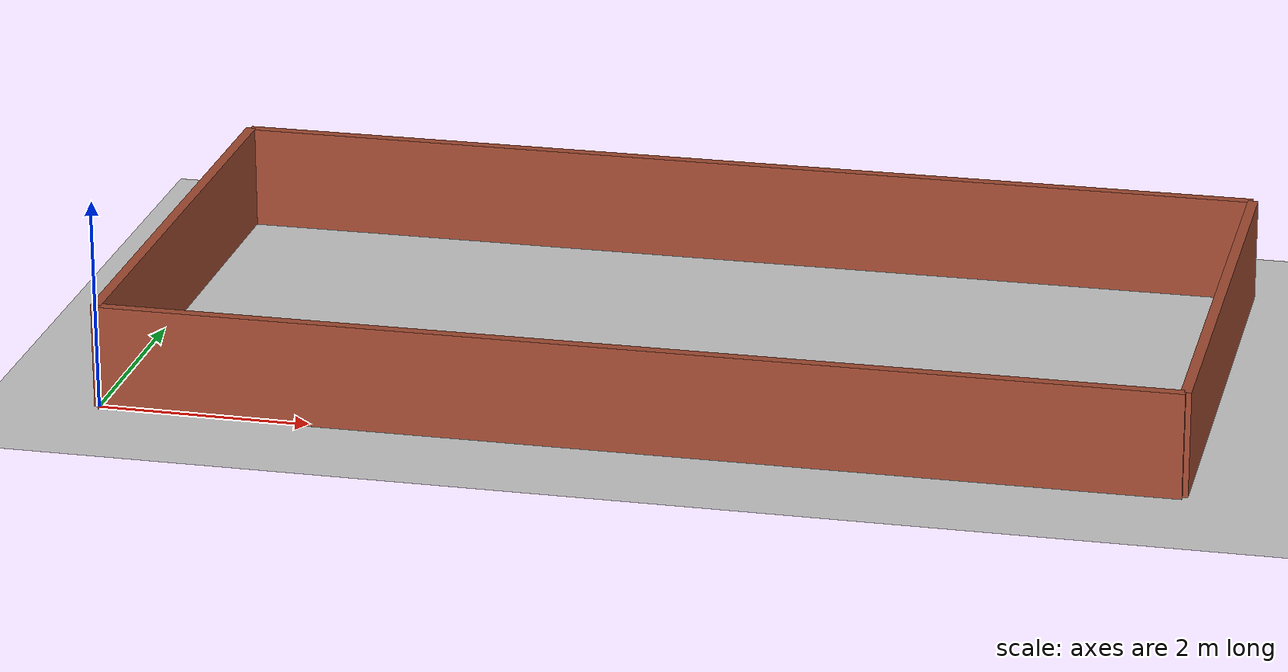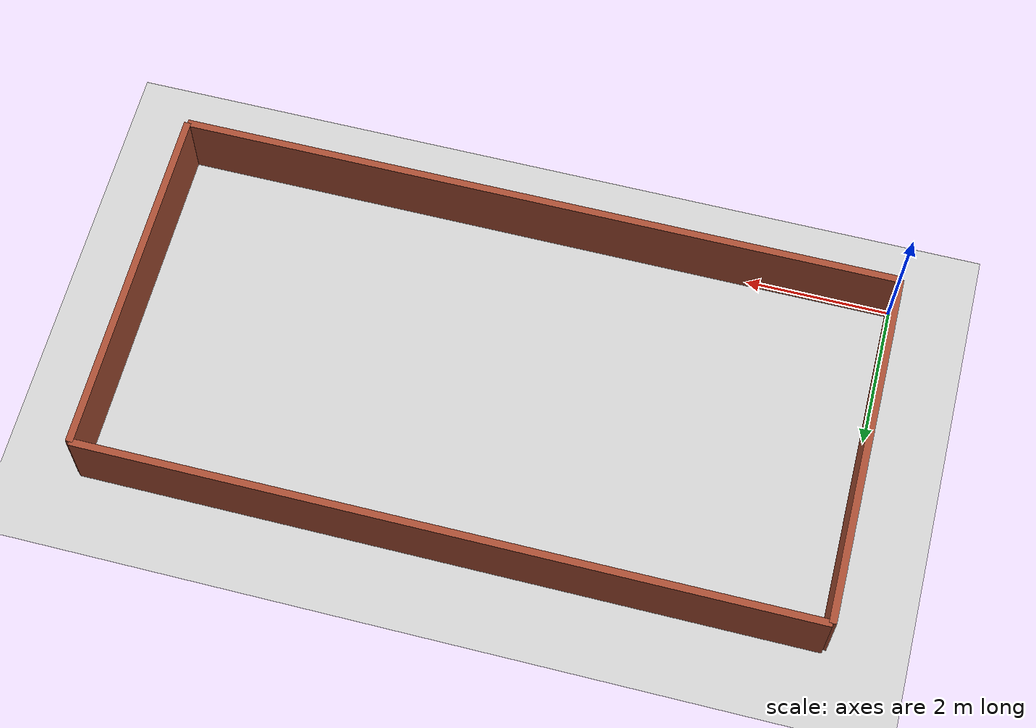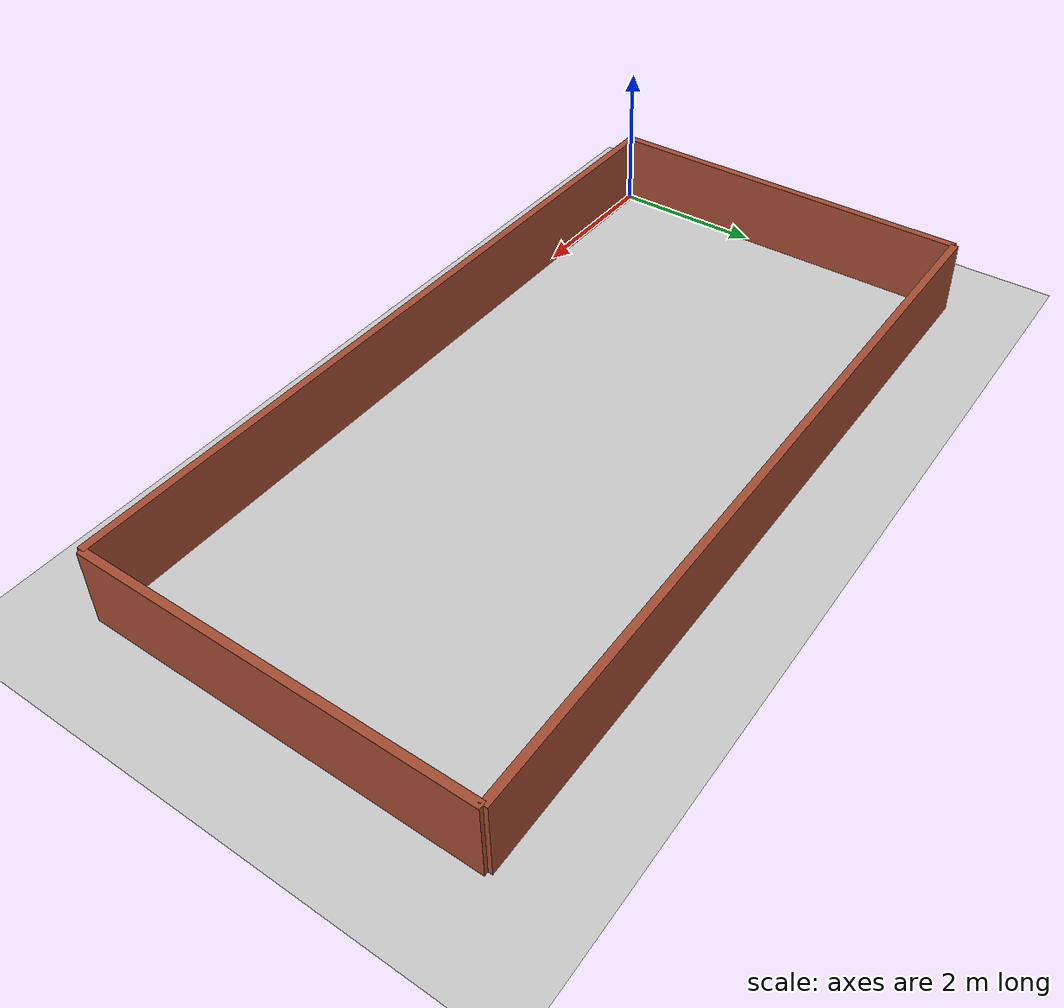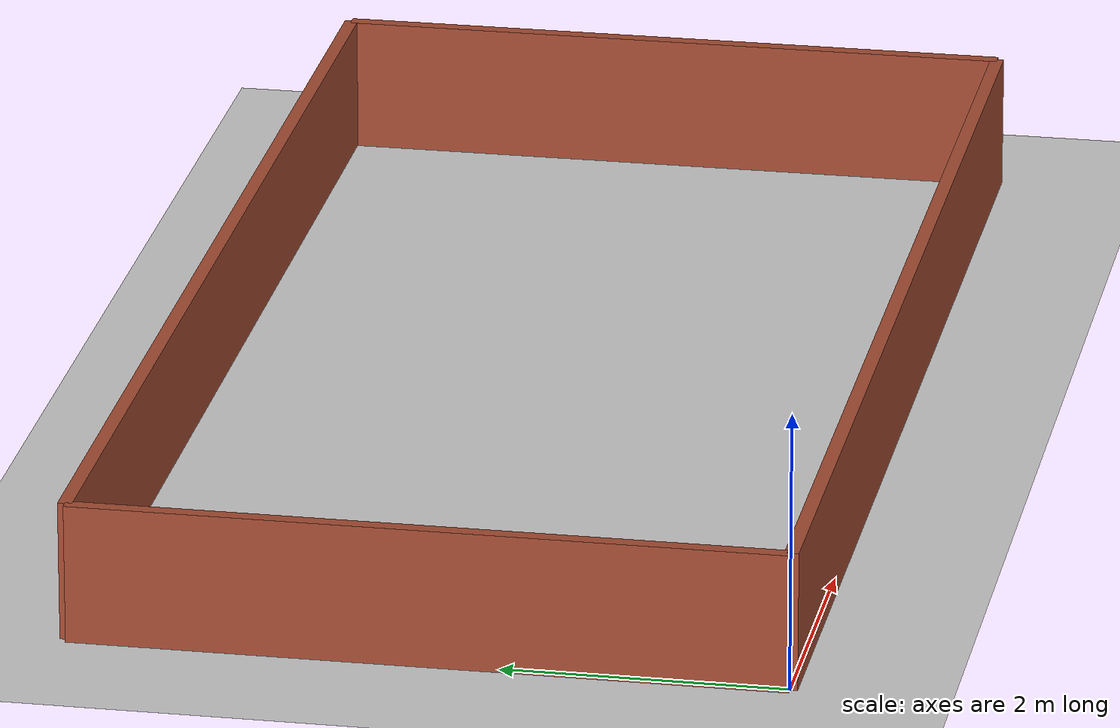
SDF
<?xml version="1.0" ?>
<sdf version="1.6">
  <world name="default">
    <!-- A global light source -->
    <include>
      <uri>model://sun</uri>
    </include>
    <!-- A ground plane -->
    <include>
      <uri>model://ground_plane</uri>
    </include>

  <model name='walls'>
  <static>1</static>
    <link name='Wall_0'>
    <pose frame=''>5 0 0 0 -0 0</pose>
      <self_collide>0</self_collide>
      <kinematic>0</kinematic>
      <visual name='Wall_0_Visual'>
        <pose frame=''>0 0 0.5 0 -0 0</pose>
        <geometry>
          <box>
            <size>10 0.1 1</size>
          </box>
        </geometry>
        <material>
          <script>
            <uri>file://media/materials/scripts/gazebo.material</uri>
            <name>Gazebo/Bricks</name>
          </script>
          <ambient>1 1 1 1</ambient>
          <diffuse>1 1 1 1</diffuse>
          <specular>0.2 0.2 0.2 1</specular>
          <emissive>0 0 0 1</emissive>
        </material>
        <cast_shadows>1</cast_shadows>
        <transparency>0</transparency>
      </visual>
      <collision name='Wall_0_Collision'>
        <laser_retro>0</laser_retro>
        <max_contacts>10</max_contacts>
        <pose frame=''>0 0 0.5 0 -0 0</pose>
        <geometry>
          <box>
            <size>10 0.1 1</size>
          </box>
        </geometry>
        <surface>
          <friction>
            <ode>
              <mu>1</mu>
              <mu2>1</mu2>
              <fdir1>0 0 0</fdir1>
              <slip1>0</slip1>
              <slip2>0</slip2>
            </ode>
            <torsional>
              <coefficient>1</coefficient>
              <patch_radius>0</patch_radius>
              <surface_radius>0</surface_radius>
              <use_patch_radius>1</use_patch_radius>
              <ode>
                <slip>0</slip>
              </ode>
            </torsional>
          </friction>
          <bounce>
            <restitution_coefficient>0</restitution_coefficient>
            <threshold>1e+06</threshold>
          </bounce>
          <contact>
            <collide_without_contact>0</collide_without_contact>
            <collide_without_contact_bitmask>1</collide_without_contact_bitmask>
            <collide_bitmask>1</collide_bitmask>
            <ode>
              <soft_cfm>0</soft_cfm>
              <soft_erp>0.2</soft_erp>
              <kp>1e+13</kp>
              <kd>1</kd>
              <max_vel>0.01</max_vel>
              <min_depth>0</min_depth>
            </ode>
            <bullet>
              <split_impulse>1</split_impulse>
              <split_impulse_penetration_threshold>-0.01</split_impulse_penetration_threshold>
              <soft_cfm>0</soft_cfm>
              <soft_erp>0.2</soft_erp>
              <kp>1e+13</kp>
              <kd>1</kd>
            </bullet>
          </contact>
        </surface>
      </collision>
    </link>

    <link name='Wall_1'>
    <pose frame=''>5 5 0 0 -0 0</pose>
      <self_collide>0</self_collide>
      <kinematic>0</kinematic>
      <visual name='Wall_1_Visual'>
        <pose frame=''>0 0 0.5 0 -0 0</pose>
        <geometry>
          <box>
            <size>10 0.1 1</size>
          </box>
        </geometry>
        <material>
          <script>
            <uri>file://media/materials/scripts/gazebo.material</uri>
            <name>Gazebo/Bricks</name>
          </script>
          <ambient>1 1 1 1</ambient>
          <diffuse>1 1 1 1</diffuse>
          <specular>0.2 0.2 0.2 1</specular>
          <emissive>0 0 0 1</emissive>
        </material>
        <cast_shadows>1</cast_shadows>
        <transparency>0</transparency>
      </visual>
      <collision name='Wall_1_Collision'>
        <laser_retro>0</laser_retro>
        <max_contacts>10</max_contacts>
        <pose frame=''>0 0 0.5 0 -0 0</pose>
        <geometry>
          <box>
            <size>10 0.1 1</size>
          </box>
        </geometry>
        <surface>
          <friction>
            <ode>
              <mu>1</mu>
              <mu2>1</mu2>
              <fdir1>0 0 0</fdir1>
              <slip1>0</slip1>
              <slip2>0</slip2>
            </ode>
            <torsional>
              <coefficient>1</coefficient>
              <patch_radius>0</patch_radius>
              <surface_radius>0</surface_radius>
              <use_patch_radius>1</use_patch_radius>
              <ode>
                <slip>0</slip>
              </ode>
            </torsional>
          </friction>
          <bounce>
            <restitution_coefficient>0</restitution_coefficient>
            <threshold>1e+06</threshold>
          </bounce>
          <contact>
            <collide_without_contact>0</collide_without_contact>
            <collide_without_contact_bitmask>1</collide_without_contact_bitmask>
            <collide_bitmask>1</collide_bitmask>
            <ode>
              <soft_cfm>0</soft_cfm>
              <soft_erp>0.2</soft_erp>
              <kp>1e+13</kp>
              <kd>1</kd>
              <max_vel>0.01</max_vel>
              <min_depth>0</min_depth>
            </ode>
            <bullet>
              <split_impulse>1</split_impulse>
              <split_impulse_penetration_threshold>-0.01</split_impulse_penetration_threshold>
              <soft_cfm>0</soft_cfm>
              <soft_erp>0.2</soft_erp>
              <kp>1e+13</kp>
              <kd>1</kd>
            </bullet>
          </contact>
        </surface>
      </collision>
    </link>

    <link name='Wall_2'>
    <pose frame=''>0 2.5 0 0 -0 1.5707</pose>
      <self_collide>0</self_collide>
      <kinematic>0</kinematic>
      <visual name='Wall_2_Visual'>
        <pose frame=''>0 0 0.5 0 -0 0</pose>
        <geometry>
          <box>
            <size>5 0.1 1</size>
          </box>
        </geometry>
        <material>
          <script>
            <uri>file://media/materials/scripts/gazebo.material</uri>
            <name>Gazebo/Bricks</name>
          </script>
          <ambient>1 1 1 1</ambient>
          <diffuse>1 1 1 1</diffuse>
          <specular>0.2 0.2 0.2 1</specular>
          <emissive>0 0 0 1</emissive>
        </material>
        <cast_shadows>1</cast_shadows>
        <transparency>0</transparency>
      </visual>
      <collision name='Wall_2_Collision'>
        <laser_retro>0</laser_retro>
        <max_contacts>10</max_contacts>
        <pose frame=''>0 0 0.5 0 -0 0</pose>
        <geometry>
          <box>
            <size>5 0.1 1</size>
          </box>
        </geometry>
        <surface>
          <friction>
            <ode>
              <mu>1</mu>
              <mu2>1</mu2>
              <fdir1>0 0 0</fdir1>
              <slip1>0</slip1>
              <slip2>0</slip2>
            </ode>
            <torsional>
              <coefficient>1</coefficient>
              <patch_radius>0</patch_radius>
              <surface_radius>0</surface_radius>
              <use_patch_radius>1</use_patch_radius>
              <ode>
                <slip>0</slip>
              </ode>
            </torsional>
          </friction>
          <bounce>
            <restitution_coefficient>0</restitution_coefficient>
            <threshold>1e+06</threshold>
          </bounce>
          <contact>
            <collide_without_contact>0</collide_without_contact>
            <collide_without_contact_bitmask>1</collide_without_contact_bitmask>
            <collide_bitmask>1</collide_bitmask>
            <ode>
              <soft_cfm>0</soft_cfm>
              <soft_erp>0.2</soft_erp>
              <kp>1e+13</kp>
              <kd>1</kd>
              <max_vel>0.01</max_vel>
              <min_depth>0</min_depth>
            </ode>
            <bullet>
              <split_impulse>1</split_impulse>
              <split_impulse_penetration_threshold>-0.01</split_impulse_penetration_threshold>
              <soft_cfm>0</soft_cfm>
              <soft_erp>0.2</soft_erp>
              <kp>1e+13</kp>
              <kd>1</kd>
            </bullet>
          </contact>
        </surface>
      </collision>
    </link>

    <link name='Wall_3'>
    <pose frame=''>10 2.5 0 0 -0 1.5707</pose>
      <self_collide>0</self_collide>
      <kinematic>0</kinematic>
      <visual name='Wall_3_Visual'>
        <pose frame=''>0 0 0.5 0 -0 0</pose>
        <geometry>
          <box>
            <size>5 0.1 1</size>
          </box>
        </geometry>
        <material>
          <script>
            <uri>file://media/materials/scripts/gazebo.material</uri>
            <name>Gazebo/Bricks</name>
          </script>
          <ambient>1 1 1 1</ambient>
          <diffuse>1 1 1 1</diffuse>
          <specular>0.2 0.2 0.2 1</specular>
          <emissive>0 0 0 1</emissive>
        </material>
        <cast_shadows>1</cast_shadows>
        <transparency>0</transparency>
      </visual>
      <collision name='Wall_3_Collision'>
        <laser_retro>0</laser_retro>
        <max_contacts>10</max_contacts>
        <pose frame=''>0 0 0.5 0 -0 0</pose>
        <geometry>
          <box>
            <size>5 0.1 1</size>
          </box>
        </geometry>
        <surface>
          <friction>
            <ode>
              <mu>1</mu>
              <mu2>1</mu2>
              <fdir1>0 0 0</fdir1>
              <slip1>0</slip1>
              <slip2>0</slip2>
            </ode>
            <torsional>
              <coefficient>1</coefficient>
              <patch_radius>0</patch_radius>
              <surface_radius>0</surface_radius>
              <use_patch_radius>1</use_patch_radius>
              <ode>
                <slip>0</slip>
              </ode>
            </torsional>
          </friction>
          <bounce>
            <restitution_coefficient>0</restitution_coefficient>
            <threshold>1e+06</threshold>
          </bounce>
          <contact>
            <collide_without_contact>0</collide_without_contact>
            <collide_without_contact_bitmask>1</collide_without_contact_bitmask>
            <collide_bitmask>1</collide_bitmask>
            <ode>
              <soft_cfm>0</soft_cfm>
              <soft_erp>0.2</soft_erp>
              <kp>1e+13</kp>
              <kd>1</kd>
              <max_vel>0.01</max_vel>
              <min_depth>0</min_depth>
            </ode>
            <bullet>
              <split_impulse>1</split_impulse>
              <split_impulse_penetration_threshold>-0.01</split_impulse_penetration_threshold>
              <soft_cfm>0</soft_cfm>
              <soft_erp>0.2</soft_erp>
              <kp>1e+13</kp>
              <kd>1</kd>
            </bullet>
          </contact>
        </surface>
      </collision>
    </link>

  </model>
  </world>
</sdf>
